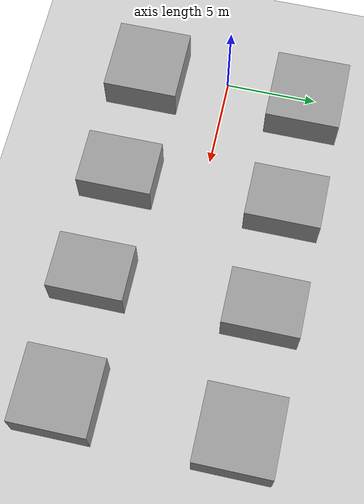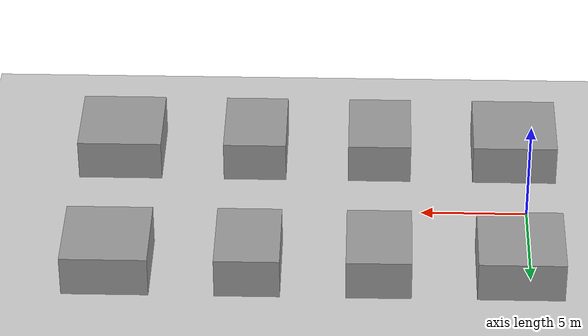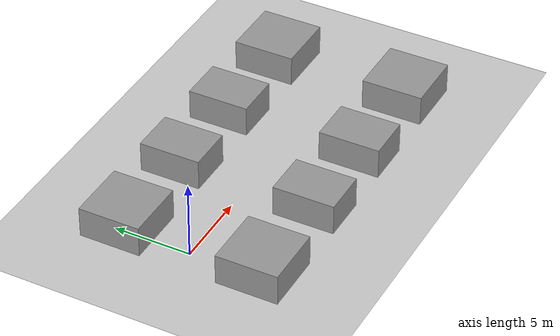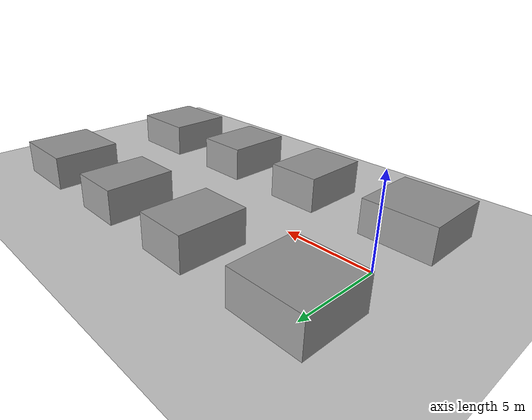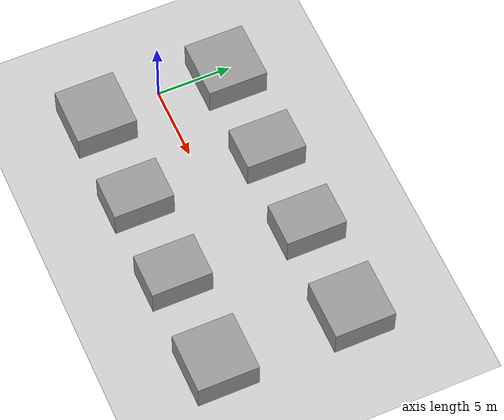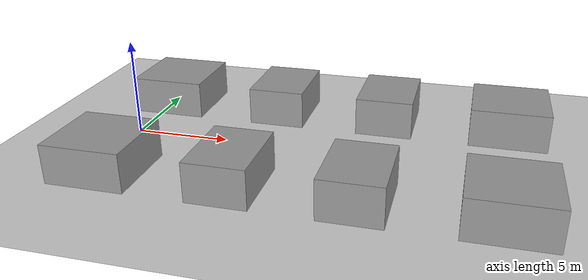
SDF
<?xml version="1.0" ?>
<sdf version="1.5">
  <world name="default">
    <!-- A global light source -->
    <include>
      <uri>model://sun</uri>
    </include>
    <!-- A ground plane -->
    <include>
      <uri>model://ground_plane</uri>
    </include>
    <!-- A unit box -->
    <model name='unit_box_0_0'>
      <static>true</static>
      <pose frame=''>0.5 4.5 1.0 0 -0 0</pose>
      <link name='link'>
        <inertial>
          <mass>1</mass>
        </inertial>
        <collision name='collision'>
          <geometry>
            <box>
              <size>4 4 2</size>
            </box>
          </geometry>
          <max_contacts>10</max_contacts>
          <surface>
            <contact>
              <ode/>
            </contact>
            <bounce/>
            <friction>
              <torsional>
                <ode/>
              </torsional>
              <ode/>
            </friction>
          </surface>
        </collision>
        <visual name='visual'>
          <geometry>
            <box>
              <size>4 4 2</size>
            </box>
          </geometry>
          <material>
            <script>
              <name>Gazebo/Grey</name>
              <uri>file://media/materials/scripts/gazebo.material</uri>
            </script>
          </material>
        </visual>
        <self_collide>0</self_collide>
        <kinematic>0</kinematic>
        <gravity>1</gravity>
      </link>
    </model>

    <model name='unit_box_1_0'>
      <static>true</static>
      <pose frame=''>0.5 -4.5 1.0 0 -0 0</pose>
      <link name='link'>
        <inertial>
          <mass>1</mass>
        </inertial>
        <collision name='collision'>
          <geometry>
            <box>
              <size>4 4 2</size>
            </box>
          </geometry>
          <max_contacts>10</max_contacts>
          <surface>
            <contact>
              <ode/>
            </contact>
            <bounce/>
            <friction>
              <torsional>
                <ode/>
              </torsional>
              <ode/>
            </friction>
          </surface>
        </collision>
        <visual name='visual'>
          <geometry>
            <box>
              <size>4 4 2</size>
            </box>
          </geometry>
          <material>
            <script>
              <name>Gazebo/Grey</name>
              <uri>file://media/materials/scripts/gazebo.material</uri>
            </script>
          </material>
        </visual>
        <self_collide>0</self_collide>
        <kinematic>0</kinematic>
        <gravity>1</gravity>
      </link>
    </model>

    <model name='unit_box_2_0'>
      <static>true</static>
      <pose frame=''>7.0 4.5 1.0 0 -0 0</pose>
      <link name='link'>
        <inertial>
          <mass>1</mass>
        </inertial>
        <collision name='collision'>
          <geometry>
            <box>
              <size>3 4 2</size>
            </box>
          </geometry>
          <max_contacts>10</max_contacts>
          <surface>
            <contact>
              <ode/>
            </contact>
            <bounce/>
            <friction>
              <torsional>
                <ode/>
              </torsional>
              <ode/>
            </friction>
          </surface>
        </collision>
        <visual name='visual'>
          <geometry>
            <box>
              <size>3 4 2</size>
            </box>
          </geometry>
          <material>
            <script>
              <name>Gazebo/Grey</name>
              <uri>file://media/materials/scripts/gazebo.material</uri>
            </script>
          </material>
        </visual>
        <self_collide>0</self_collide>
        <kinematic>0</kinematic>
        <gravity>1</gravity>
      </link>
    </model>

    <model name='unit_box_3_0'>
      <static>true</static>
      <pose frame=''>7.0 -4.5 1.0 0 -0 0</pose>
      <link name='link'>
        <inertial>
          <mass>1</mass>
        </inertial>
        <collision name='collision'>
          <geometry>
            <box>
              <size>3 4 2</size>
            </box>
          </geometry>
          <max_contacts>10</max_contacts>
          <surface>
            <contact>
              <ode/>
            </contact>
            <bounce/>
            <friction>
              <torsional>
                <ode/>
              </torsional>
              <ode/>
            </friction>
          </surface>
        </collision>
        <visual name='visual'>
          <geometry>
            <box>
              <size>3 4 2</size>
            </box>
          </geometry>
          <material>
            <script>
              <name>Gazebo/Grey</name>
              <uri>file://media/materials/scripts/gazebo.material</uri>
            </script>
          </material>
        </visual>
        <self_collide>0</self_collide>
        <kinematic>0</kinematic>
        <gravity>1</gravity>
      </link>
    </model>

    <model name='unit_box_4_0'>
      <static>true</static>
      <pose frame=''>13.0 4.5 1.0 0 -0 0</pose>
      <link name='link'>
        <inertial>
          <mass>1</mass>
        </inertial>
        <collision name='collision'>
          <geometry>
            <box>
              <size>3 4 2</size>
            </box>
          </geometry>
          <max_contacts>10</max_contacts>
          <surface>
            <contact>
              <ode/>
            </contact>
            <bounce/>
            <friction>
              <torsional>
                <ode/>
              </torsional>
              <ode/>
            </friction>
          </surface>
        </collision>
        <visual name='visual'>
          <geometry>
            <box>
              <size>3 4 2</size>
            </box>
          </geometry>
          <material>
            <script>
              <name>Gazebo/Grey</name>
              <uri>file://media/materials/scripts/gazebo.material</uri>
            </script>
          </material>
        </visual>
        <self_collide>0</self_collide>
        <kinematic>0</kinematic>
        <gravity>1</gravity>
      </link>
    </model>

    <model name='unit_box_5_0'>
      <static>true</static>
      <pose frame=''>13.0 -4.5 1.0 0 -0 0</pose>
      <link name='link'>
        <inertial>
          <mass>1</mass>
        </inertial>
        <collision name='collision'>
          <geometry>
            <box>
              <size>3 4 2</size>
            </box>
          </geometry>
          <max_contacts>10</max_contacts>
          <surface>
            <contact>
              <ode/>
            </contact>
            <bounce/>
            <friction>
              <torsional>
                <ode/>
              </torsional>
              <ode/>
            </friction>
          </surface>
        </collision>
        <visual name='visual'>
          <geometry>
            <box>
              <size>3 4 2</size>
            </box>
          </geometry>
          <material>
            <script>
              <name>Gazebo/Grey</name>
              <uri>file://media/materials/scripts/gazebo.material</uri>
            </script>
          </material>
        </visual>
        <self_collide>0</self_collide>
        <kinematic>0</kinematic>
        <gravity>1</gravity>
      </link>
    </model>

    <model name='unit_box_6_0'>
      <static>true</static>
      <pose frame=''>19.5 4.5 1.0 0 -0 0</pose>
      <link name='link'>
        <inertial>
          <mass>1</mass>
        </inertial>
        <collision name='collision'>
          <geometry>
            <box>
              <size>4 4 2</size>
            </box>
          </geometry>
          <max_contacts>10</max_contacts>
          <surface>
            <contact>
              <ode/>
            </contact>
            <bounce/>
            <friction>
              <torsional>
                <ode/>
              </torsional>
              <ode/>
            </friction>
          </surface>
        </collision>
        <visual name='visual'>
          <geometry>
            <box>
              <size>4 4 2</size>
            </box>
          </geometry>
          <material>
            <script>
              <name>Gazebo/Grey</name>
              <uri>file://media/materials/scripts/gazebo.material</uri>
            </script>
          </material>
        </visual>
        <self_collide>0</self_collide>
        <kinematic>0</kinematic>
        <gravity>1</gravity>
      </link>
    </model>

    <model name='unit_box_7_0'>
      <static>true</static>
      <pose frame=''>19.5 -4.5 1.0 0 -0 0</pose>
      <link name='link'>
        <inertial>
          <mass>1</mass>
        </inertial>
        <collision name='collision'>
          <geometry>
            <box>
              <size>4 4 2</size>
            </box>
          </geometry>
          <max_contacts>10</max_contacts>
          <surface>
            <contact>
              <ode/>
            </contact>
            <bounce/>
            <friction>
              <torsional>
                <ode/>
              </torsional>
              <ode/>
            </friction>
          </surface>
        </collision>
        <visual name='visual'>
          <geometry>
            <box>
              <size>4 4 2</size>
            </box>
          </geometry>
          <material>
            <script>
              <name>Gazebo/Grey</name>
              <uri>file://media/materials/scripts/gazebo.material</uri>
            </script>
          </material>
        </visual>
        <self_collide>0</self_collide>
        <kinematic>0</kinematic>
        <gravity>1</gravity>
      </link>
    </model>
  </world>
</sdf>
